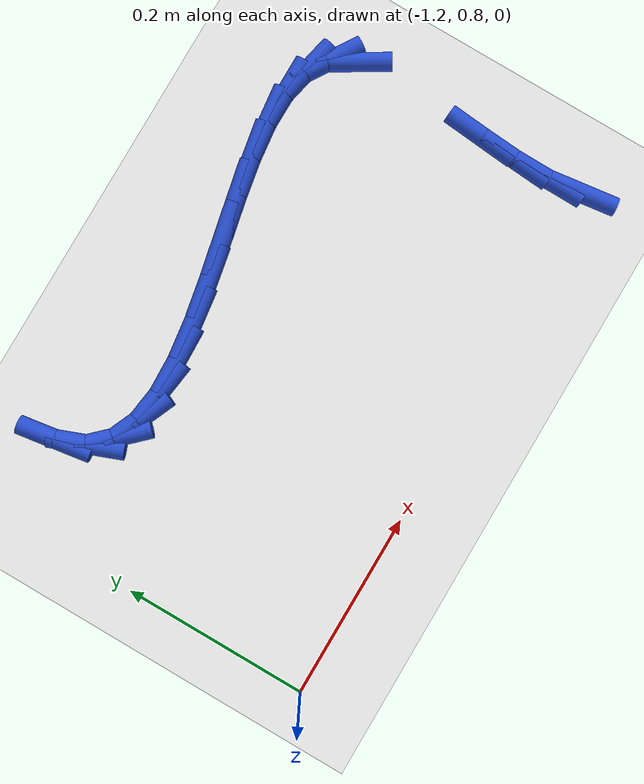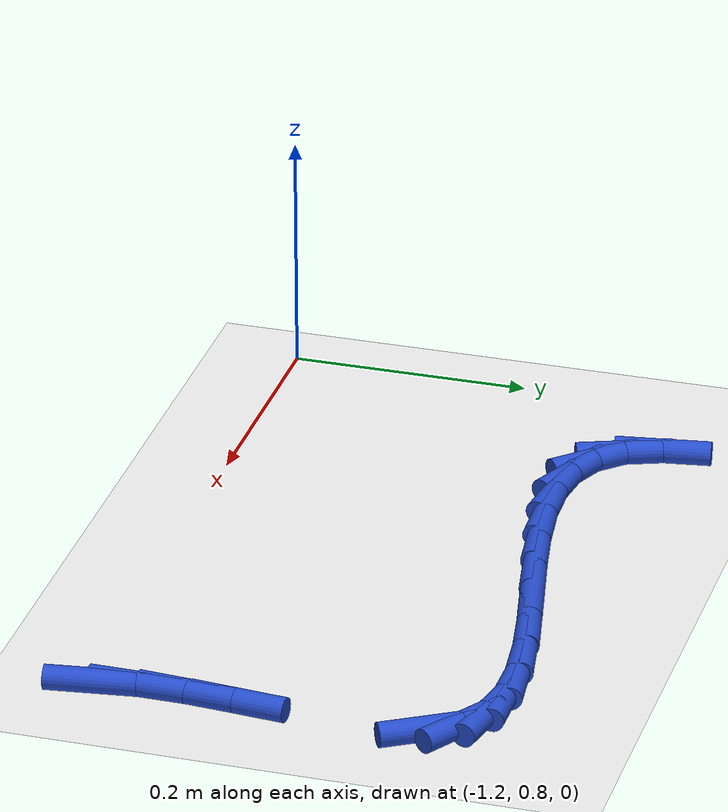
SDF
<sdf version="1.6">
 <world name="default">
  <model name="ground_plane">
   <static>1</static>
   <link name="link">
    <collision name="collision">
     <geometry><plane><normal>0 0 1</normal><size>100 100</size></plane></geometry>
     <surface><friction><ode><mu>100</mu><mu2>50</mu2></ode></friction></surface>
    </collision>
    <visual name="visual">
     <cast_shadows>0</cast_shadows>
     <geometry><plane><normal>0 0 1</normal><size>100 100</size></plane></geometry>
     <material>
      <script><uri>file://media/materials/scripts/gazebo.material</uri><name>Gazebo/WhiteGlow</name></script>
     </material>
    </visual>
   </link>
  </model>
  <model name="line">
   <link name="link_32">
    <pose>-0.6193014164403144 0.812359718115688 0.01 0 1.57 -1.439282408955972</pose>
    <collision name="collision">
     <geometry><cylinder><radius>0.01</radius><length>0.08</length></cylinder></geometry>
    </collision>
    <visual name="visual">
     <material>
      <script><name>Gazebo/Blue</name><uri>file://media/materials/scripts/gazebo.material</uri></script>
     </material>
     <geometry><cylinder><radius>0.01</radius><length>0.08</length></cylinder></geometry>
    </visual>
   </link>
   <link name="link_33">
    <pose>-0.6238047725097432 0.8464045016777911 0.01 0 1.57 1.5614137025409496</pose>
    <collision name="collision">
     <geometry><cylinder><radius>0.01</radius><length>0.08</length></cylinder></geometry>
    </collision>
    <visual name="visual">
     <material>
      <script><name>Gazebo/Blue</name><uri>file://media/materials/scripts/gazebo.material</uri></script>
     </material>
     <geometry><cylinder><radius>0.01</radius><length>0.08</length></cylinder></geometry>
    </visual>
   </link>
   <link name="link_34">
    <pose>-0.6234380412922119 0.8854895642340136 0.01 0 1.57 1.4952332428060828</pose>
    <collision name="collision">
     <geometry><cylinder><radius>0.01</radius><length>0.08</length></cylinder></geometry>
    </collision>
    <visual name="visual">
     <material>
      <script><name>Gazebo/Blue</name><uri>file://media/materials/scripts/gazebo.material</uri></script>
     </material>
     <geometry><cylinder><radius>0.01</radius><length>0.08</length></cylinder></geometry>
    </visual>
   </link>
   <link name="link_35">
    <pose>-0.6202646739865761 0.9274058690676447 0.01 0 1.57 1.4789844318858119</pose>
    <collision name="collision">
     <geometry><cylinder><radius>0.01</radius><length>0.08</length></cylinder></geometry>
    </collision>
    <visual name="visual">
     <material>
      <script><name>Gazebo/Blue</name><uri>file://media/materials/scripts/gazebo.material</uri></script>
     </material>
     <geometry><cylinder><radius>0.01</radius><length>0.08</length></cylinder></geometry>
    </visual>
   </link>
   <link name="link_39">
    <pose>-0.6207738678600939 1.0792027768420374 0.01 0 1.57 -1.032121564579606</pose>
    <collision name="collision">
     <geometry><cylinder><radius>0.01</radius><length>0.08</length></cylinder></geometry>
    </collision>
    <visual name="visual">
     <material>
      <script><name>Gazebo/Blue</name><uri>file://media/materials/scripts/gazebo.material</uri></script>
     </material>
     <geometry><cylinder><radius>0.01</radius><length>0.08</length></cylinder></geometry>
    </visual>
   </link>
   <link name="link_40">
    <pose>-0.6344964567202794 1.1021644709265332 0.01 0 1.57 -0.5665945314020063</pose>
    <collision name="collision">
     <geometry><cylinder><radius>0.01</radius><length>0.08</length></cylinder></geometry>
    </collision>
    <visual name="visual">
     <material>
      <script><name>Gazebo/Blue</name><uri>file://media/materials/scripts/gazebo.material</uri></script>
     </material>
     <geometry><cylinder><radius>0.01</radius><length>0.08</length></cylinder></geometry>
    </visual>
   </link>
   <link name="link_41">
    <pose>-0.6564731460597895 1.1161454786117004 0.01 0 1.57 -0.21399571540646548</pose>
    <collision name="collision">
     <geometry><cylinder><radius>0.01</radius><length>0.08</length></cylinder></geometry>
    </collision>
    <visual name="visual">
     <material>
      <script><name>Gazebo/Blue</name><uri>file://media/materials/scripts/gazebo.material</uri></script>
     </material>
     <geometry><cylinder><radius>0.01</radius><length>0.08</length></cylinder></geometry>
    </visual>
   </link>
   <link name="link_42">
    <pose>-0.6855406475530186 1.122462522994577 0.01 0 1.57 -0.004172750003612432</pose>
    <collision name="collision">
     <geometry><cylinder><radius>0.01</radius><length>0.08</length></cylinder></geometry>
    </collision>
    <visual name="visual">
     <material>
      <script><name>Gazebo/Blue</name><uri>file://media/materials/scripts/gazebo.material</uri></script>
     </material>
     <geometry><cylinder><radius>0.01</radius><length>0.08</length></cylinder></geometry>
    </visual>
   </link>
   <link name="link_43">
    <pose>-0.7203750096974166 1.12260787892298 0.01 0 1.57 0.11492848517439634</pose>
    <collision name="collision">
     <geometry><cylinder><radius>0.01</radius><length>0.08</length></cylinder></geometry>
    </collision>
    <visual name="visual">
     <material>
      <script><name>Gazebo/Blue</name><uri>file://media/materials/scripts/gazebo.material</uri></script>
     </material>
     <geometry><cylinder><radius>0.01</radius><length>0.08</length></cylinder></geometry>
    </visual>
   </link>
   <link name="link_44">
    <pose>-0.7596522809904332 1.1180738212447265 0.01 0 1.57 0.18014553520085633</pose>
    <collision name="collision">
     <geometry><cylinder><radius>0.01</radius><length>0.08</length></cylinder></geometry>
    </collision>
    <visual name="visual">
     <material>
      <script><name>Gazebo/Blue</name><uri>file://media/materials/scripts/gazebo.material</uri></script>
     </material>
     <geometry><cylinder><radius>0.01</radius><length>0.08</length></cylinder></geometry>
    </visual>
   </link>
   <link name="link_45">
    <pose>-0.8020485099295177 1.110352624807633 0.01 0 1.57 0.20993576550918802</pose>
    <collision name="collision">
     <geometry><cylinder><radius>0.01</radius><length>0.08</length></cylinder></geometry>
    </collision>
    <visual name="visual">
     <material>
      <script><name>Gazebo/Blue</name><uri>file://media/materials/scripts/gazebo.material</uri></script>
     </material>
     <geometry><cylinder><radius>0.01</radius><length>0.08</length></cylinder></geometry>
    </visual>
   </link>
   <link name="link_46">
    <pose>-0.8462397450121197 1.1009365644595168 0.01 0 1.57 0.21212405250788746</pose>
    <collision name="collision">
     <geometry><cylinder><radius>0.01</radius><length>0.08</length></cylinder></geometry>
    </collision>
    <visual name="visual">
     <material>
      <script><name>Gazebo/Blue</name><uri>file://media/materials/scripts/gazebo.material</uri></script>
     </material>
     <geometry><cylinder><radius>0.01</radius><length>0.08</length></cylinder></geometry>
    </visual>
   </link>
   <link name="link_47">
    <pose>-0.8909020347356889 1.0913179150481942 0.01 0 1.57 0.18787604139338507</pose>
    <collision name="collision">
     <geometry><cylinder><radius>0.01</radius><length>0.08</length></cylinder></geometry>
    </collision>
    <visual name="visual">
     <material>
      <script><name>Gazebo/Blue</name><uri>file://media/materials/scripts/gazebo.material</uri></script>
     </material>
     <geometry><cylinder><radius>0.01</radius><length>0.08</length></cylinder></geometry>
    </visual>
   </link>
   <link name="link_48">
    <pose>-0.9347114275976749 1.0829889514214823 0.01 0 1.57 0.13245706130021845</pose>
    <collision name="collision">
     <geometry><cylinder><radius>0.01</radius><length>0.08</length></cylinder></geometry>
    </collision>
    <visual name="visual">
     <material>
      <script><name>Gazebo/Blue</name><uri>file://media/materials/scripts/gazebo.material</uri></script>
     </material>
     <geometry><cylinder><radius>0.01</radius><length>0.08</length></cylinder></geometry>
    </visual>
   </link>
   <link name="link_49">
    <pose>-0.9763439720955264 1.0774419484271978 0.01 0 1.57 0.03336577379109931</pose>
    <collision name="collision">
     <geometry><cylinder><radius>0.01</radius><length>0.08</length></cylinder></geometry>
    </collision>
    <visual name="visual">
     <material>
      <script><name>Gazebo/Blue</name><uri>file://media/materials/scripts/gazebo.material</uri></script>
     </material>
     <geometry><cylinder><radius>0.01</radius><length>0.08</length></cylinder></geometry>
    </visual>
   </link>
   <link name="link_50">
    <pose>-1.014475716726694 1.0761691809131573 0.01 0 1.57 -0.13410907635341549</pose>
    <collision name="collision">
     <geometry><cylinder><radius>0.01</radius><length>0.08</length></cylinder></geometry>
    </collision>
    <visual name="visual">
     <material>
      <script><name>Gazebo/Blue</name><uri>file://media/materials/scripts/gazebo.material</uri></script>
     </material>
     <geometry><cylinder><radius>0.01</radius><length>0.08</length></cylinder></geometry>
    </visual>
   </link>
   <link name="link_51">
    <pose>-1.0477827099886272 1.080662923727178 0.01 0 1.57 -0.4084097208299337</pose>
    <collision name="collision">
     <geometry><cylinder><radius>0.01</radius><length>0.08</length></cylinder></geometry>
    </collision>
    <visual name="visual">
     <material>
      <script><name>Gazebo/Blue</name><uri>file://media/materials/scripts/gazebo.material</uri></script>
     </material>
     <geometry><cylinder><radius>0.01</radius><length>0.08</length></cylinder></geometry>
    </visual>
   </link>
   <link name="link_52">
    <pose>-1.074941000378775 1.0924154517170765 0.01 0 1.57 -0.8057478742179125</pose>
    <collision name="collision">
     <geometry><cylinder><radius>0.01</radius><length>0.08</length></cylinder></geometry>
    </collision>
    <visual name="visual">
     <material>
      <script><name>Gazebo/Blue</name><uri>file://media/materials/scripts/gazebo.material</uri></script>
     </material>
     <geometry><cylinder><radius>0.01</radius><length>0.08</length></cylinder></geometry>
    </visual>
   </link>
   <link name="link_53">
    <pose>-1.0946266363945873 1.1129190397306699 0.01 0 1.57 -1.2043488727486766</pose>
    <collision name="collision">
     <geometry><cylinder><radius>0.01</radius><length>0.08</length></cylinder></geometry>
    </collision>
    <visual name="visual">
     <material>
      <script><name>Gazebo/Blue</name><uri>file://media/materials/scripts/gazebo.material</uri></script>
     </material>
     <geometry><cylinder><radius>0.01</radius><length>0.08</length></cylinder></geometry>
    </visual>
   </link>
   <link name="link_54">
    <pose>-1.1061241487863465 1.1428775026969902 0.01 0 1.57 -1.4189695658748431</pose>
    <collision name="collision">
     <geometry><cylinder><radius>0.01</radius><length>0.08</length></cylinder></geometry>
    </collision>
    <visual name="visual">
     <material>
      <script><name>Gazebo/Blue</name><uri>file://media/materials/scripts/gazebo.material</uri></script>
     </material>
     <geometry><cylinder><radius>0.01</radius><length>0.08</length></cylinder></geometry>
    </visual>
   </link>
  </model>
 </world>
</sdf>
